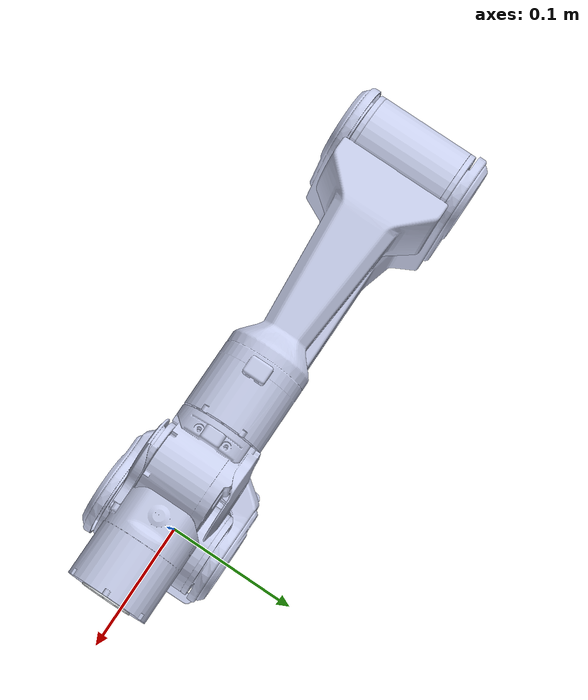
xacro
<?xml version="1.0" encoding="utf-8"?>
<robot
  name="piper"
  xmlns:xacro="http://ros.org/wiki/xacro">
<!-- world -->
  <link name="world"/>
  <joint name="fixed_base_joint" type="fixed">
      <parent link="world"/>
      <child link="base_link"/>
  </joint>
<!-- piper -->
<link
    name="base_link">
    <inertial>
      <origin
        xyz="-0.00473641164191482 2.56829134630247E-05 0.041451518036016"
        rpy="0 0 0" />
      <mass
        value="1.02" />
      <inertia
        ixx="0.00267433"
        ixy="-0.00000073"
        ixz="-0.00017389"
        iyy="0.00282612"
        iyz="0.0000004"
        izz="0.00089624" />
    </inertial>
    <visual>
      <origin
        xyz="0 0 0"
        rpy="0 0 0" />
      <geometry>
        <mesh
          filename="package://piper_description/meshes/base_link.STL" />
      </geometry>
      <material
        name="">
        <color
          rgba="0.792156862745098 0.819607843137255 0.933333333333333 1" />
      </material>
    </visual>
    <collision>
      <origin
        xyz="0 0 0"
        rpy="0 0 0" />
      <geometry>
        <mesh
          filename="package://piper_description/meshes/base_link.STL" />
      </geometry>
    </collision>
  </link>
  <link
    name="link1">
    <inertial>
      <origin
        xyz="0.000121504734057468 0.000104632162460536 -0.00438597309559853"
        rpy="0 0 0" />
      <mass
        value="0.71" />
      <inertia
        ixx="0.00048916"
        ixy="-0.00000036"
        ixz="-0.00000224"
        iyy="0.00040472"
        iyz="-0.00000242"
        izz="0.00043982" />
    </inertial>
    <visual>
      <origin
        xyz="0 0 0"
        rpy="0 0 0" />
      <geometry>
        <mesh
          filename="package://piper_description/meshes/link1.STL" />
      </geometry>
      <material
        name="">
        <color
          rgba="0.792156862745098 0.819607843137255 0.933333333333333 1" />
      </material>
    </visual>
    <collision>
      <origin
        xyz="0 0 0"
        rpy="0 0 0" />
      <geometry>
        <mesh
          filename="package://piper_description/meshes/link1.STL" />
      </geometry>
    </collision>
  </link>
  <joint
    name="joint1"
    type="revolute">
    <origin
      xyz="0 0 0.123"
      rpy="0 0 0" />
    <parent
      link="base_link" />
    <child
      link="link1" />
    <axis
      xyz="0 0 1" />
    <limit
      lower="-2.618"
      upper="2.168"
      effort="100"
      velocity="5" />
  </joint>
  <link
    name="link2">
    <inertial>
      <origin
        xyz="0.198666145229743 -0.010926924140076 0.00142121714502687"
        rpy="0 0 0" />
      <mass
        value="1.17" />
      <inertia
        ixx="0.00116918"
        ixy="-0.00180037"
        ixz="0.00025146"
        iyy="0.06785384"
        iyz="-0.00000455"
        izz="0.06774489" />
    </inertial>
    <visual>
      <origin
        xyz="0 0 0"
        rpy="0 0 0" />
      <geometry>
        <mesh
          filename="package://piper_description/meshes/link2.STL" />
      </geometry>
      <material
        name="">
        <color
          rgba="0.792156862745098 0.819607843137255 0.933333333333333 1" />
      </material>
    </visual>
    <collision>
      <origin
        xyz="0 0 0"
        rpy="0 0 0" />
      <geometry>
        <mesh
          filename="package://piper_description/meshes/link2.STL" />
      </geometry>
    </collision>
  </link>
  <joint
    name="joint2"
    type="revolute">
    <origin
      xyz="0 0 0"
      rpy="1.5708 -0.1359 -3.1416" />
    <parent
      link="link1" />
    <child
      link="link2" />
    <axis
      xyz="0 0 1" />
    <limit
      lower="0"
      upper="3.14"
      effort="100"
      velocity="5" />
  </joint>
  <link
    name="link3">
    <inertial>
      <origin
        xyz="-0.0202737662122021 -0.133914995944595 -0.000458682652737356"
        rpy="0 0 0" />
      <mass
        value="0.5" />
      <inertia
        ixx="0.01361711"
        ixy="0.00165794"
        ixz="-0.00000048"
        iyy="0.00045024"
        iyz="-0.00000045"
        izz="0.01380322" />
    </inertial>
    <visual>
      <origin
        xyz="0 0 0"
        rpy="0 0 0" />
      <geometry>
        <mesh
          filename="package://piper_description/meshes/link3.STL" />
      </geometry>
      <material
        name="">
        <color
          rgba="0.792156862745098 0.819607843137255 0.933333333333333 1" />
      </material>
    </visual>
    <collision>
      <origin
        xyz="0 0 0"
        rpy="0 0 0" />
      <geometry>
        <mesh
          filename="package://piper_description/meshes/link3.STL" />
      </geometry>
    </collision>
  </link>
  <joint
    name="joint3"
    type="revolute">
    <origin
      xyz="0.28503 0 0"
      rpy="0 0 -1.7939" />
    <parent
      link="link2" />
    <child
      link="link3" />
    <axis
      xyz="0 0 1" />
    <limit
      lower="-2.967"
      upper="0"
      effort="100"
      velocity="5" />
  </joint>
  <link
    name="link4">
    <inertial>
      <origin
        xyz="-9.66635791618542E-05 0.000876064475651083 -0.00496880904640868"
        rpy="0 0 0" />
      <mass
        value="0.38" />
      <inertia
        ixx="0.00018501"
        ixy="0.00000054"
        ixz="0.00000120"
        iyy="0.00018965"
        iyz="-0.00000841"
        izz="0.00015484" />
    </inertial>
    <visual>
      <origin
        xyz="0 0 0"
        rpy="0 0 0" />
      <geometry>
        <mesh
          filename="package://piper_description/meshes/link4.STL" />
      </geometry>
      <material
        name="">
        <color
          rgba="0.792156862745098 0.819607843137255 0.933333333333333 1" />
      </material>
    </visual>
    <collision>
      <origin
        xyz="0 0 0"
        rpy="0 0 0" />
      <geometry>
        <mesh
          filename="package://piper_description/meshes/link4.STL" />
      </geometry>
    </collision>
  </link>
  <joint
    name="joint4"
    type="revolute">
    <origin
      xyz="-0.021984 -0.25075 0"
      rpy="1.5708 0 0" />
    <parent
      link="link3" />
    <child
      link="link4" />
    <axis
      xyz="0 0 1" />
    <limit
      lower="-1.745"
      upper="1.745"
      effort="100"
      velocity="5" />
  </joint>
  <link
    name="link5">
    <inertial>
      <origin
        xyz="-4.10554118924211E-05 -0.0566486692356075 -0.0037205791677906"
        rpy="0 0 0" />
      <mass
        value="0.383" />
      <inertia
        ixx="0.00166169"
        ixy="0.00000006"
        ixz="-0.00000007"
        iyy="0.00018510"
        iyz="0.00001026"
        izz="0.00164321" />
    </inertial>
    <visual>
      <origin
        xyz="0 0 0"
        rpy="0 0 0" />
      <geometry>
        <mesh
          filename="package://piper_description/meshes/link5.STL" />
      </geometry>
      <material
        name="">
        <color
          rgba="0.792156862745098 0.819607843137255 0.933333333333333 1" />
      </material>
    </visual>
    <collision>
      <origin
        xyz="0 0 0"
        rpy="0 0 0" />
      <geometry>
        <mesh
          filename="package://piper_description/meshes/link5.STL" />
      </geometry>
    </collision>
  </link>
  <joint
    name="joint5"
    type="revolute">
    <origin
      xyz="0 0 0"
      rpy="-1.5708 0 0" />
    <parent
      link="link4" />
    <child
      link="link5" />
    <axis
      xyz="0 0 1" />
    <limit
      lower="-1.22"
      upper="1.22"
      effort="100"
      velocity="5" />
  </joint>
  <link
    name="link6">
    <inertial>
      <origin
        xyz="-8.82590762930069E-05 9.0598378529832E-06 -0.002"
        rpy="0 0 0" />
      <mass
        value="0.00699089613564366" />
      <inertia
        ixx="5.73015540542155E-07"
        ixy="-1.98305403089247E-22"
        ixz="-7.2791893904596E-23"
        iyy="5.73015540542155E-07"
        iyz="-3.4146026640245E-24"
        izz="1.06738869138926E-06" />
    </inertial>
    <visual>
      <origin
        xyz="0 0 0"
        rpy="0 0 0" />
      <geometry>
        <mesh
          filename="package://piper_description/meshes/link6.STL" />
      </geometry>
      <material
        name="">
        <color
          rgba="0.898039215686275 0.917647058823529 0.929411764705882 1" />
      </material>
    </visual>
    <collision>
      <origin
        xyz="0 0 0"
        rpy="0 0 0" />
      <geometry>
        <mesh
          filename="package://piper_description/meshes/link6.STL" />
      </geometry>
    </collision>
  </link>
  <joint
    name="joint6"
    type="revolute">
    <origin
      xyz="8.8259E-05 -0.091 0"
      rpy="1.5708 0 0" />
    <parent
      link="link5" />
    <child
      link="link6" />
    <axis
      xyz="0 0 1" />
    <limit
      lower="-2.0944"
      upper="2.0944"
      effort="100"
      velocity="3" />
  </joint>

<!-- controller -->
  <xacro:macro name="transmission_block" params="tran_name joint_name motor_name">
    <transmission name="${tran_name}">
        <type>transmission_interface/SimpleTransmission</type>
        <joint name="${joint_name}">
            <hardwareInterface>hardware_interface/PositionJointInterface</hardwareInterface>
        </joint>
        <actuator name="$motor_name">
            <hardwareInterface>hardware_interface/PositionJointInterface</hardwareInterface>
            <mechanicalReduction>1</mechanicalReduction>
        </actuator>
    </transmission>
  </xacro:macro>

  <xacro:transmission_block tran_name="tran1" joint_name="joint1" motor_name="motor1"/>
  <xacro:transmission_block tran_name="tran2" joint_name="joint2" motor_name="motor2"/>
  <xacro:transmission_block tran_name="tran3" joint_name="joint3" motor_name="motor3"/>
  <xacro:transmission_block tran_name="tran4" joint_name="joint4" motor_name="motor4"/>
  <xacro:transmission_block tran_name="tran5" joint_name="joint5" motor_name="motor5"/>
  <xacro:transmission_block tran_name="tran6" joint_name="joint6" motor_name="motor6"/>
<!-- gazebo -->
  <gazebo>
    <plugin name="gazebo_ros_control" filename="libgazebo_ros_control.so">
        <robotNamespace>/piper</robotNamespace>
        <legacyModeNS>true</legacyModeNS>
    </plugin>
  </gazebo>
</robot>
